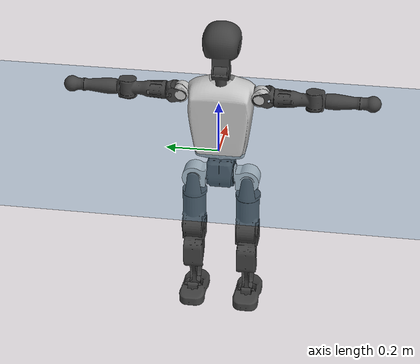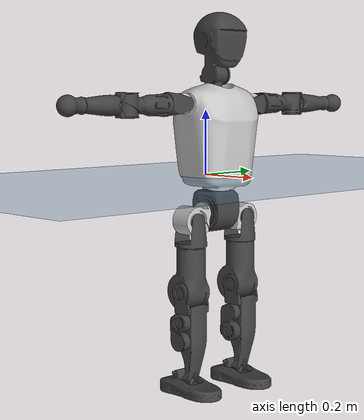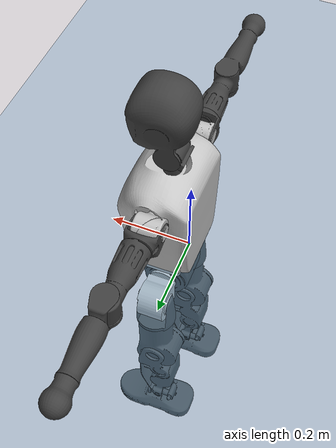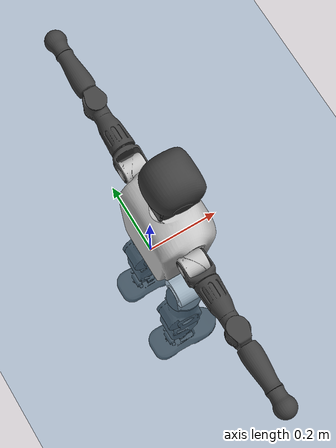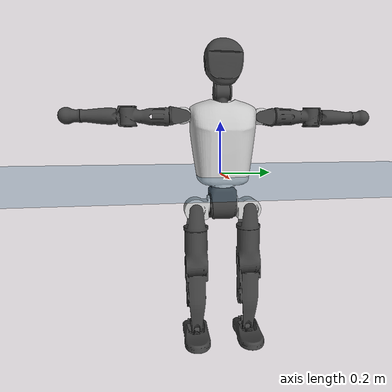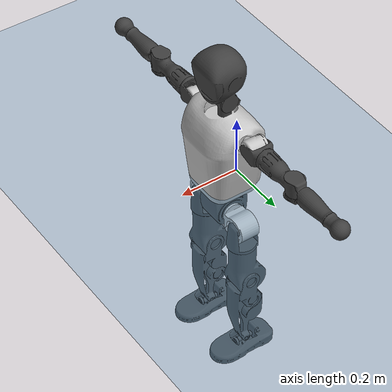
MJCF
<mujoco model="T1">
  <compiler angle="radian" assetdir="assets" balanceinertia="true" inertiafromgeom="false"/>

  <option timestep="0.005" density="1.2" viscosity="2e-05"/>

  <size nkey="1"/>

  <visual>
    <quality shadowsize="8192"/>
    <map shadowclip="0.5"/>
  </visual>

  <default>
    <default class="/">
      <joint armature="0.01" damping="0.01" frictionloss="0.1"/>
      <geom contype="0" conaffinity="0" group="1" solref="-1000 -80"/>
      <site size="0.01 0.005 0.005" group="5"/>
      <general forcelimited="true" biastype="affine" gainprm="25" biasprm="0 -25 -0.6"/>
      <default class="t1">
        <geom rgba="0.25 0.25 0.25 1"/>
        <default class="visual">
          <geom type="mesh" group="2"/>
        </default>
        <default class="collision">
          <geom group="3"/>
        </default>
        <default class="foot">
          <geom size="0.1115 0.05 0.015" type="box" condim="6" group="4" priority="1" solimp="0.015 1 0.015"/>
        </default>
        <default class="reward_collision_sphere">
          <geom group="5" rgba="1 0 0 1"/>
        </default>
      </default>
    </default>
  </default>

  <asset>
    <texture type="skybox" colorspace="auto" name="//unnamed_texture_0" builtin="gradient" rgb1="0.95 0.95 0.95" rgb2="0.95 0.95 0.95" width="100" height="600"/>
    <texture type="2d" colorspace="auto" name="texplane" builtin="checker" rgb1="0.345 0.575 0.748" rgb2="0.345 0.575 0.748" markrgb="1 1 1" width="512" height="512"/>
    <material name="MatPlane" class="/" texture="texplane" texuniform="true" texrepeat="2 2" specular="0.9"/>
    <mesh name="Trunk" class="/" file="Trunk.stl"/>
    <mesh name="H1" class="/" file="H1.stl"/>
    <mesh name="H2" class="/" file="H2.stl"/>
    <mesh name="AL1" class="/" file="AL1.stl"/>
    <mesh name="AL2" class="/" file="AL2.stl"/>
    <mesh name="AL3" class="/" file="AL3.stl"/>
    <mesh name="left_hand_link" class="/" file="left_hand_link.stl"/>
    <mesh name="AR1" class="/" file="AR1.stl"/>
    <mesh name="AR2" class="/" file="AR2.stl"/>
    <mesh name="AR3" class="/" file="AR3.stl"/>
    <mesh name="right_hand_link" class="/" file="right_hand_link.stl"/>
    <mesh name="Waist" class="/" file="Waist.stl"/>
    <mesh name="Hip_Pitch_Left" class="/" file="Hip_Pitch_Left.stl"/>
    <mesh name="Hip_Roll_Left" class="/" file="Hip_Roll_Left.stl"/>
    <mesh name="Hip_Yaw_Left" class="/" file="Hip_Yaw_Left.stl"/>
    <mesh name="Shank_Left" class="/" file="Shank_Left.stl"/>
    <mesh name="Ankle_Cross_Left" class="/" file="Ankle_Cross_Left.stl"/>
    <mesh name="left_foot_link" class="/" file="left_foot_link.stl"/>
    <mesh name="Hip_Pitch_Right" class="/" file="Hip_Pitch_Right.stl"/>
    <mesh name="Hip_Roll_Right" class="/" file="Hip_Roll_Right.stl"/>
    <mesh name="Hip_Yaw_Right" class="/" file="Hip_Yaw_Right.stl"/>
    <mesh name="Shank_Right" class="/" file="Shank_Right.stl"/>
    <mesh name="Ankle_Cross_Right" class="/" file="Ankle_Cross_Right.stl"/>
    <mesh name="right_foot_link" class="/" file="right_foot_link.stl"/>
  </asset>

  <worldbody>
    <geom name="floor" class="/" size="100 100 0.125" type="plane" group="0" material="MatPlane"/>
    <light name="toplight_shadow" class="/" pos="0 0 5" dir="0.0990148 0.0990148 -0.990148" type="directional" ambient="0.04 0.04 0.04" diffuse="0.55 0.55 0.55" specular="0.12 0.12 0.12"/>
    <light name="toplight_fill" class="/" pos="0 0 5" dir="0.0990148 0.0990148 -0.990148" type="directional" castshadow="false" ambient="0.04 0.04 0.04" diffuse="0.3 0.3 0.3" specular="0.08 0.08 0.08"/>
    <body name="trunk" childclass="t1" pos="-0.00192259 -0.00273559 0.00253689" quat="0.999999 -0.00108829 0.000595054 0.000502232">
      <inertial pos="0.0387155 -0.00216956 0.106781" quat="0.999951 -0.00211012 -0.00948011 0.00182281" mass="8.23435" diaginertia="0.0176897 0.0663673 0.0551343"/>
      <joint name="//unnamed_joint_0" type="free" armature="0" damping="0" frictionloss="0"/>
      <geom name="//unnamed_geom_1" class="visual" rgba="0.76 0.76 0.76 1" mesh="Trunk"/>
      <geom name="//unnamed_geom_2" class="collision" size="0.0668578 0.0891437 0.133716" pos="0.0429923 0 0.119458" type="box"/>
      <geom name="//unnamed_geom_3" class="reward_collision_sphere" size="0.102515" pos="0.0429923 0 0.099548"/>
      <geom name="//unnamed_geom_4" class="reward_collision_sphere" size="0.0133716" pos="0.0429923 0.0817948 0"/>
      <geom name="//unnamed_geom_5" class="reward_collision_sphere" size="0.0133716" pos="0.0429923 -0.0817948 0"/>
      <geom name="//unnamed_geom_6" class="reward_collision_sphere" size="0.0133716" pos="0.0429923 0.102965 0.179186"/>
      <geom name="//unnamed_geom_7" class="reward_collision_sphere" size="0.0133716" pos="0.0429923 -0.102965 0.179186"/>
      <site name="imu" pos="-0.0139038 -0.0118383 -0.00301481" size="0.00891437"/>
      <camera name="track" pos="0 -1.92458 0" quat="0.707107 0.707107 0 0" mode="trackcom"/>
      <camera name="ego_camera" pos="0.0874177 0 0.418102" quat="-0.5 -0.5 0.5 0.5"/>
      <body name="H1" pos="0.0453968 0.000769216 0.242766" quat="0.999999 5.42041e-05 -0.00031622 0.00113439">
        <inertial pos="0.00111115 -0.001911 0.0598559" quat="0.766036 -0.0165271 0.00643731 0.642553" mass="0.318555" diaginertia="4.5338e-05 0.000191128 0.000141787"/>
        <joint name="AAHead_yaw" pos="0 0 0" axis="-0.010491 -0.00396302 0.999937" range="-1.62698 1.55546" armature="0.0101149" damping="0.00701693" frictionloss="0.076485"/>
        <geom name="//unnamed_geom_8" class="visual" mesh="H1"/>
        <body name="H2" pos="0.00214587 0.000541993 0.0623436" quat="1 -7.4741e-05 -0.000221899 -0.000458945">
          <inertial pos="0.00437377 -0.00078158 0.097627" quat="0.988556 0.10554 -0.0736718 -0.0786873" mass="0.431341" diaginertia="0.000367304 0.00150709 0.00162239"/>
          <joint name="Head_pitch" pos="0 0 0" axis="-0.0104013 -0.999901 -0.0095088" range="-1.20941 0.397529" armature="0.00875622" damping="0.0121763" frictionloss="0.0817246"/>
          <geom name="//unnamed_geom_9" class="visual" mesh="H2"/>
          <geom name="//unnamed_geom_10" class="collision" size="0.0713149" pos="0.00716538 0 0.109503"/>
          <geom name="//unnamed_geom_11" class="reward_collision_sphere" size="0.0802293" pos="0.0143308 0 0.099548"/>
        </body>
      </body>
      <body name="AL1" pos="0.0403374 0.101156 0.217691" quat="1 3.4771e-05 0.000675961 0.000361021">
        <inertial pos="-0.00132978 0.0436687 -0.00180307" quat="0.502116 0.48822 -0.510371 0.499041" mass="0.379344" diaginertia="0.00026256 0.00109459 0.000291813"/>
        <joint name="Left_Shoulder_Pitch" pos="0 0 0" axis="0.00935645 0.99992 0.00851945" stiffness="0.0127905" range="-3.2999 1.18399" armature="0.00868128" damping="0.0143178" frictionloss="0.0852498"/>
        <geom name="//unnamed_geom_12" class="visual" rgba="0.76 0.76 0.76 1" mesh="AL1"/>
        <body name="AL2" pos="0.0011088 0.0436167 -0.00276708" quat="1 -0.000320558 -5.75362e-05 7.92572e-05">
          <inertial pos="0.00121477 0.0351928 -0.000406443" quat="0.486948 0.511946 -0.488695 0.51183" mass="0.111672" diaginertia="7.57619e-05 0.000276177 0.000170502"/>
          <joint name="Left_Shoulder_Roll" pos="0 0 0" axis="-0.999943 0.0100201 -0.00357892" range="-1.52673 1.72527" armature="0.00802399" damping="0.00117235" frictionloss="0.0994506"/>
          <geom name="//unnamed_geom_13" class="visual" mesh="AL2"/>
          <body name="AL3" pos="0.00336706 0.0598829 0.00188496" quat="1 -0.000477149 0.000349012 0.000702557">
            <inertial pos="-0.000622399 0.0794666 -0.00172445" quat="0.711631 0.702469 0.00768911 0.00767011" mass="0.710259" diaginertia="0.00235377 0.0105625 0.000576834"/>
            <joint name="Left_Elbow_Pitch" pos="0 0 0" axis="0.00827438 -0.999903 -0.0112126" range="-2.24785 2.23394" armature="0.00994034" damping="0.00022455" frictionloss="0.101674"/>
            <geom name="//unnamed_geom_14" class="visual" mesh="AL3"/>
            <geom name="//unnamed_geom_15" class="collision" size="0.0267431 0.0668578" pos="0 0.0481146 0" quat="0.707105 0.707108 0 0" type="cylinder"/>
            <geom name="//unnamed_geom_16" class="reward_collision_sphere" size="0.0320917"/>
            <body name="left_hand_link" pos="0.00293803 0.141479 -0.00101084" quat="0.999999 -0.00108829 -0.000684326 0.000595835">
              <inertial pos="0.000275878 0.105874 -0.00222368" quat="0.70635 0.707849 -0.00235033 -0.00369775" mass="0.239488" diaginertia="0.00158607 0.00677189 0.000210457"/>
              <joint name="Left_Elbow_Yaw" pos="0 0 0" axis="-0.0141678 -0.0114597 0.999834" stiffness="0.0111724" range="-2.44861 -0.00345075" armature="0.00858021" damping="0.010141" frictionloss="0.101033"/>
              <geom name="//unnamed_geom_17" class="visual" mesh="left_hand_link"/>
              <geom name="//unnamed_geom_18" class="collision" size="0.0267431 0.0780007" pos="0 0.125098 0" quat="0.707105 0.707108 0 0" type="cylinder"/>
              <geom name="//unnamed_geom_19" class="reward_collision_sphere" size="0.0445718"/>
              <geom name="//unnamed_geom_20" class="reward_collision_sphere" size="0.0312003" pos="0 0.105852 0"/>
              <geom name="//unnamed_geom_21" class="reward_collision_sphere" size="0.0312003" pos="0 0.206893 0"/>
            </body>
          </body>
        </body>
      </body>
      <body name="AR1" pos="0.040049 -0.0994348 0.218548" quat="1 0.000137269 -0.000565863 -0.00047473">
        <inertial pos="-0.0016114 -0.0456345 0.00212496" quat="0.505282 0.493439 -0.505235 0.495929" mass="0.376154" diaginertia="0.000249178 0.00107871 0.000296151"/>
        <joint name="Right_Shoulder_Pitch" pos="0 0 0" axis="-0.000909306 -0.999999 -0.00129123" stiffness="0.00363701" range="-1.24191 3.31237" armature="0.00767991" damping="0.0128104" frictionloss="0.0888741"/>
        <geom name="//unnamed_geom_22" class="visual" rgba="0.76 0.76 0.76 1" mesh="AR1"/>
        <body name="AR2" pos="0.000204079 -0.0416111 -0.00118055" quat="1 -8.32376e-05 6.00808e-05 -3.33908e-05">
          <inertial pos="0.00254085 -0.0366304 -0.00182293" quat="0.517266 0.480732 -0.518756 0.481897" mass="0.117945" diaginertia="7.37287e-05 0.000280456 0.00016868"/>
          <joint name="Right_Shoulder_Roll" pos="0 0 0" axis="-0.999996 0.00139453 -0.00236215" stiffness="0.00755946" range="-1.75615 1.61917" armature="0.00881268" damping="0" frictionloss="0.0888972"/>
          <geom name="//unnamed_geom_23" class="visual" mesh="AR2"/>
          <body name="AR3" pos="0.0025313 -0.0574881 -0.00352939" quat="1 3.98884e-05 -0.000434091 0.000362417">
            <inertial pos="0.00121502 -0.0847438 0.000672294" quat="0.706833 0.707377 8.0951e-05 0.00227544" mass="0.726011" diaginertia="0.00245749 0.0111273 0.000637762"/>
            <joint name="Right_Elbow_Pitch" pos="0 0 0" axis="0.00626216 0.999973 -0.00395758" range="-2.27762 2.26949" armature="0.00985257" damping="0.00839214" frictionloss="0.0790941"/>
            <geom name="//unnamed_geom_24" class="visual" mesh="AR3"/>
            <geom name="//unnamed_geom_25" class="collision" size="0.0267431 0.0668578" pos="0 -0.0481146 0" quat="0.707105 0.707108 0 0" type="cylinder"/>
            <geom name="//unnamed_geom_26" class="reward_collision_sphere" size="0.0320917"/>
            <body name="right_hand_link" pos="-0.000516378 -0.142434 0.000657924" quat="0.999999 -0.000844309 0.000955607 0.000522141">
              <inertial pos="-0.000609184 -0.1042 -0.000910424" quat="0.708752 0.705411 0.00724502 0.00352385" mass="0.234805" diaginertia="0.00149924 0.00671781 0.000217486"/>
              <joint name="Right_Elbow_Yaw" pos="0 0 0" axis="-0.000331904 -0.00915569 0.999958" range="-0.0444958 2.4718" armature="0.00898353" damping="0.00172718" frictionloss="0.0924832"/>
              <geom name="//unnamed_geom_27" class="visual" mesh="right_hand_link"/>
              <geom name="//unnamed_geom_28" class="collision" size="0.0267431 0.0780007" pos="0 -0.125098 0" quat="0.707105 0.707108 0 0" type="cylinder"/>
              <geom name="//unnamed_geom_29" class="reward_collision_sphere" size="0.0445718"/>
              <geom name="//unnamed_geom_30" class="reward_collision_sphere" size="0.0312003" pos="0 -0.105852 0"/>
              <geom name="//unnamed_geom_31" class="reward_collision_sphere" size="0.0312003" pos="0 -0.206893 0"/>
            </body>
          </body>
        </body>
      </body>
      <body name="Waist" pos="0.0480613 0.000586059 -0.115416" quat="1 -0.00052327 0.000794564 -9.86161e-05">
        <inertial pos="0.00143926 -0.000725472 0.00988997" quat="0.981961 -0.0084796 -0.188859 0.00363309" mass="1.76926" diaginertia="0.000981654 0.0044411 0.00461762"/>
        <joint name="Waist" pos="0 0 0" axis="0.0143121 -0.000878527 0.999897" range="-1.5763 1.5899" armature="0.00966764" damping="0.021155" frictionloss="0.0775622"/>
        <geom name="//unnamed_geom_32" class="visual" mesh="Waist"/>
        <body name="Hip_Pitch_Left" pos="0.00374464 0.103597 -0.00211093" quat="0.999999 0.000177958 -0.000523173 0.00088725">
          <inertial pos="0.00220183 -0.00498803 -0.0204067" quat="0.976293 0.21552 0.0190261 0.00635512" mass="0.749015" diaginertia="0.000337332 0.00120784 0.00125273"/>
          <joint name="Left_Hip_Pitch" pos="0 0 0" axis="0.000527224 0.999894 -0.0145219" stiffness="0.00329964" range="-1.81147 1.61738" armature="0.00942105" damping="0.00105715" frictionloss="0.0913022"/>
          <geom name="//unnamed_geom_33" class="visual" rgba="0.76 0.76 0.76 1" mesh="Hip_Pitch_Left"/>
          <body name="Hip_Roll_Left" pos="0.0014963 0.000377296 -0.018145" quat="1 0.000125064 -0.000127374 0.000258864">
            <inertial pos="-0.0017735 0.0026679 -0.0534997" quat="0.708516 -0.0199876 -0.00671949 0.70538" mass="0.272917" diaginertia="0.000332033 0.00119384 0.000497278"/>
            <joint name="Left_Hip_Roll" pos="0 0 0" axis="-0.999975 -0.00622838 -0.00332852" range="-1.56725 0.244672" armature="0.00844158" damping="0.010735" frictionloss="0.0764953"/>
            <geom name="//unnamed_geom_34" class="visual" mesh="Hip_Roll_Left"/>
            <geom name="//unnamed_geom_35" class="reward_collision_sphere" size="0.049029"/>
            <body name="Hip_Yaw_Left" pos="-0.00138031 0.00198455 -0.079491" quat="1 -5.22044e-06 0.000264442 9.94816e-06">
              <inertial pos="-0.00558662 -0.00078015 -0.0881603" quat="0.700176 -0.0261251 -0.0345386 0.712656" mass="1.43737" diaginertia="0.00472894 0.0201066 0.00241035"/>
              <joint name="Left_Hip_Yaw" pos="0 0 0" axis="0.00628553 -0.00880391 -0.999941" range="-0.957869 0.951634" armature="0.00930044" damping="0.0150806" frictionloss="0.0890175"/>
              <geom name="//unnamed_geom_36" class="visual" mesh="Hip_Yaw_Left"/>
              <geom name="//unnamed_geom_37" class="collision" size="0.0445718 0.0713149" type="cylinder"/>
              <body name="Shank_Left" pos="-0.00581514 0.00169857 -0.13646" quat="1 -0.000720587 -7.91094e-05 -0.000189201">
                <inertial pos="-0.0043973 -0.00158436 -0.123569" quat="0.997677 0.00158272 -0.01947 0.0652677" mass="1.2374" diaginertia="0.00674456 0.0284817 0.00187225"/>
                <joint name="Left_Knee_Pitch" pos="0 0 0" axis="-0.000240054 1 0.000553041" stiffness="0.00236196" range="0.048361 2.3329" armature="0.00947951" damping="0.0242795" frictionloss="0.0934337"/>
                <geom name="//unnamed_geom_38" class="visual" mesh="Shank_Left"/>
                <geom name="//unnamed_geom_39" class="collision" size="0.0445718 0.0668578" pos="0 0 -0.119458" type="cylinder"/>
                <geom name="//unnamed_geom_40" class="reward_collision_sphere" size="0.0579434"/>
                <body name="Ankle_Cross_Left" pos="0.00146176 -0.000414413 -0.281717" quat="1 0.000311451 -7.86187e-05 -2.40045e-05">
                  <inertial pos="-0.00169722 0.000772318 -0.0052922" quat="0.441374 0.551094 0.55235 0.443163" mass="0.0491795" diaginertia="5.58763e-06 2.04632e-05 1.10606e-05"/>
                  <joint name="Left_Ankle_Pitch" pos="0 0 0" axis="-0.00986434 0.999947 0.00286407" range="-0.903117 0.341518" armature="0.00905601" damping="0.00847376" frictionloss="0.0788419"/>
                  <geom name="//unnamed_geom_41" class="visual" mesh="Ankle_Cross_Left"/>
                  <body name="left_foot_link" pos="0.00117959 0.00227326 -0.0118068" quat="1 -0.000142286 0.000313313 0.000770318">
                    <inertial pos="0.00213155 -6.57347e-05 -0.010841" quat="0.00593902 0.620315 0.0121293 0.784237" mass="0.505617" diaginertia="0.000527571 0.00202013 0.00212224"/>
                    <joint name="Left_Ankle_Roll" pos="0 0 0" axis="-0.999986 -0.00228833 0.00486349" range="-0.452782 0.389592" armature="0.00889076" damping="0" frictionloss="0.0963607"/>
                    <geom name="//unnamed_geom_42" class="visual" mesh="left_foot_link"/>
                    <geom name="left_foot" class="foot" size="0.109899 0.0402102 0.0128061" pos="0.00716538 0 -0.0149322"/>
                    <geom name="//unnamed_geom_44" class="reward_collision_sphere" size="0.0463547" pos="0.00716538 0 -0.0149322"/>
                    <geom name="//unnamed_geom_45" class="reward_collision_sphere" size="0.0267431" pos="0.0680711 -0.0221327 -0.0149322"/>
                    <geom name="//unnamed_geom_46" class="reward_collision_sphere" size="0.0267431" pos="-0.0501577 -0.0221327 -0.0149322"/>
                    <site name="left_foot" class="foot" pos="0.00716538 0 -0.0149322" size="0.00891437"/>
                  </body>
                </body>
              </body>
            </body>
          </body>
        </body>
        <body name="Hip_Pitch_Right" pos="-0.00333627 -0.103029 -0.000378987" quat="0.999999 0.000497309 -0.00160359 0.000255717">
          <inertial pos="-0.00234139 0.00641515 -0.0151422" quat="0.974176 -0.225057 0.0170115 -0.00637066" mass="0.736508" diaginertia="0.000348766 0.00124702 0.0012706"/>
          <joint name="Right_Hip_Pitch" pos="0 0 0" axis="0.00125804 -0.999991 -0.00410465" range="-1.56954 1.8253" armature="0.00939211" damping="0" frictionloss="0.101784"/>
          <geom name="//unnamed_geom_47" class="visual" rgba="0.76 0.76 0.76 1" mesh="Hip_Pitch_Right"/>
          <body name="Hip_Roll_Right" pos="0.00223068 -0.000171413 -0.0219643" quat="1 0.000201878 2.73198e-05 2.64181e-05">
            <inertial pos="-0.00152673 -0.0028061 -0.0561732" quat="0.704989 -0.0110867 0.00485606 0.709115" mass="0.28338" diaginertia="0.00032733 0.0012632 0.000495016"/>
            <joint name="Right_Hip_Roll" pos="0 0 0" axis="-0.999994 -0.000526953 0.00329415" range="-0.25521 1.57829" armature="0.0101355" damping="0.00865217" frictionloss="0.0779967"/>
            <geom name="//unnamed_geom_48" class="visual" mesh="Hip_Roll_Right"/>
            <geom name="//unnamed_geom_49" class="reward_collision_sphere" size="0.049029"/>
            <body name="Hip_Yaw_Right" pos="-0.00220481 0.000960951 -0.0822886" quat="1 -5.80531e-05 -0.000107819 0.000155877">
              <inertial pos="-0.0046195 -0.00287022 -0.0871032" quat="0.713951 -0.0329532 -0.0339115 0.698597" mass="1.57803" diaginertia="0.00482063 0.0221301 0.00252261"/>
              <joint name="Right_Hip_Yaw" pos="0 0 0" axis="-0.00246959 0.00568224 -0.999981" stiffness="0.00616977" range="-0.986347 1.01251" armature="0.00817696" damping="0" frictionloss="0.0904972"/>
              <geom name="//unnamed_geom_50" class="visual" mesh="Hip_Yaw_Right"/>
              <geom name="//unnamed_geom_51" class="collision" size="0.0445718 0.0713149" type="cylinder"/>
              <body name="Shank_Right" pos="-0.00801009 0.000591302 -0.135672" quat="1 -2.11395e-05 7.25943e-05 7.98248e-05">
                <inertial pos="-0.00247336 0.000746743 -0.120757" quat="0.999631 0.00630293 -0.0142516 -0.0222646" mass="1.29214" diaginertia="0.00686445 0.0288481 0.0018971"/>
                <joint name="Right_Knee_Pitch" pos="0 0 0" axis="-0.00220195 -0.999995 0.00209996" range="-2.33802 0.00494129" armature="0.00920232" damping="0.0104421" frictionloss="0.0995132"/>
                <geom name="//unnamed_geom_52" class="visual" mesh="Shank_Right"/>
                <geom name="//unnamed_geom_53" class="collision" size="0.0445718 0.0668578" pos="0 0 -0.119458" type="cylinder"/>
                <geom name="//unnamed_geom_54" class="reward_collision_sphere" size="0.0579434"/>
                <body name="Ankle_Cross_Right" pos="0.00312477 0.000745671 -0.279265" quat="1 -0.000314062 -9.87398e-05 0.000158874">
                  <inertial pos="-0.00137029 0.00276699 -0.00847028" quat="0.433826 0.550334 0.552761 0.45098" mass="0.0499415" diaginertia="5.67518e-06 2.13071e-05 1.07247e-05"/>
                  <joint name="Right_Ankle_Pitch" pos="0 0 0" axis="-0.00693322 -0.999976 0.000564556" range="-0.378923 0.856391" armature="0.00901676" damping="0.00840218" frictionloss="0.093719"/>
                  <geom name="//unnamed_geom_55" class="visual" mesh="Ankle_Cross_Right"/>
                  <body name="right_foot_link" pos="-0.000129341 -0.00378368 -0.00910577" quat="1 -0.000105059 -2.36302e-05 -0.000309599">
                    <inertial pos="0.00166696 -0.000390256 -0.00626805" quat="-0.0123909 0.624436 0.00440981 0.780965" mass="0.47838" diaginertia="0.000516693 0.00198976 0.00207192"/>
                    <joint name="Right_Ankle_Roll" pos="0 0 0" axis="-0.999904 0.00228775 -0.01364" range="-0.440269 0.406515" armature="0.00966801" damping="0.0119183" frictionloss="0.0798968"/>
                    <geom name="//unnamed_geom_56" class="visual" mesh="right_foot_link"/>
                    <geom name="right_foot" class="foot" size="0.103734 0.0395028 0.0120505" pos="0.00716538 0 -0.0149322"/>
                    <geom name="//unnamed_geom_58" class="reward_collision_sphere" size="0.0356575"/>
                    <geom name="//unnamed_geom_59" class="reward_collision_sphere" size="0.0267431" pos="0.00716538 0 -0.0149322"/>
                    <geom name="//unnamed_geom_60" class="reward_collision_sphere" size="0.0267431" pos="0.0680711 0.0221327 -0.0149322"/>
                    <geom name="//unnamed_geom_61" class="reward_collision_sphere" size="0.0267431" pos="-0.0501577 0.0221327 -0.0149322"/>
                    <site name="right_foot" class="foot" pos="0.00716538 0 -0.0149322" size="0.00891437"/>
                  </body>
                </body>
              </body>
            </body>
          </body>
        </body>
      </body>
    </body>
  </worldbody>

  <contact>
    <pair class="/" geom1="floor" geom2="left_foot" name="//unnamed_contact_0"/>
    <pair class="/" geom1="floor" geom2="right_foot" name="//unnamed_contact_1"/>
  </contact>

  <actuator>
    <general name="AAHead_yaw" class="/" joint="AAHead_yaw" forcerange="-5.67111 5.67111" gainprm="21.9015" biasprm="0 -21.9015 -0.515467"/>
    <general name="Head_pitch" class="/" joint="Head_pitch" forcerange="-6.62031 6.62031" gainprm="21.9015" biasprm="0 -21.9015 -0.515467"/>
    <general name="Left_Shoulder_Pitch" class="/" joint="Left_Shoulder_Pitch" forcerange="-15.9522 15.9522" gainprm="21.9015" biasprm="0 -21.9015 -0.515467"/>
    <general name="Left_Shoulder_Roll" class="/" joint="Left_Shoulder_Roll" forcerange="-16.9348 16.9348" gainprm="21.9015" biasprm="0 -21.9015 -0.515467"/>
    <general name="Left_Elbow_Pitch" class="/" joint="Left_Elbow_Pitch" forcerange="-17.7607 17.7607" gainprm="21.9015" biasprm="0 -21.9015 -0.515467"/>
    <general name="Left_Elbow_Yaw" class="/" joint="Left_Elbow_Yaw" forcerange="-17.0241 17.0241" gainprm="21.9015" biasprm="0 -21.9015 -0.515467"/>
    <general name="Right_Shoulder_Pitch" class="/" joint="Right_Shoulder_Pitch" forcerange="-16.2881 16.2881" gainprm="21.9015" biasprm="0 -21.9015 -0.515467"/>
    <general name="Right_Shoulder_Roll" class="/" joint="Right_Shoulder_Roll" forcerange="-17.7342 17.7342" gainprm="21.9015" biasprm="0 -21.9015 -0.515467"/>
    <general name="Right_Elbow_Pitch" class="/" joint="Right_Elbow_Pitch" forcerange="-17.739 17.739" gainprm="21.9015" biasprm="0 -21.9015 -0.515467"/>
    <general name="Right_Elbow_Yaw" class="/" joint="Right_Elbow_Yaw" forcerange="-14.2905 14.2905" gainprm="21.9015" biasprm="0 -21.9015 -0.515467"/>
    <general name="Waist" class="/" joint="Waist" forcerange="-26.8321 26.8321" gainprm="21.9015" biasprm="0 -21.9015 -0.515467"/>
    <general name="Left_Hip_Pitch" class="/" joint="Left_Hip_Pitch" forcerange="-44.0923 44.0923" gainprm="21.9015" biasprm="0 -21.9015 -0.515467"/>
    <general name="Left_Hip_Roll" class="/" joint="Left_Hip_Roll" forcerange="-27.5743 27.5743" gainprm="21.9015" biasprm="0 -21.9015 -0.515467"/>
    <general name="Left_Hip_Yaw" class="/" joint="Left_Hip_Yaw" forcerange="-27.9803 27.9803" gainprm="21.9015" biasprm="0 -21.9015 -0.515467"/>
    <general name="Left_Knee_Pitch" class="/" joint="Left_Knee_Pitch" forcerange="-53.0641 53.0641" gainprm="21.9015" biasprm="0 -21.9015 -0.515467"/>
    <general name="Left_Ankle_Pitch" class="/" joint="Left_Ankle_Pitch" forcerange="-18.2465 18.2465" gainprm="21.9015" biasprm="0 -21.9015 -0.515467"/>
    <general name="Left_Ankle_Roll" class="/" joint="Left_Ankle_Roll" forcerange="-13.4423 13.4423" gainprm="21.9015" biasprm="0 -21.9015 -0.515467"/>
    <general name="Right_Hip_Pitch" class="/" joint="Right_Hip_Pitch" forcerange="-41.5843 41.5843" gainprm="21.9015" biasprm="0 -21.9015 -0.515467"/>
    <general name="Right_Hip_Roll" class="/" joint="Right_Hip_Roll" forcerange="-26.7241 26.7241" gainprm="21.9015" biasprm="0 -21.9015 -0.515467"/>
    <general name="Right_Hip_Yaw" class="/" joint="Right_Hip_Yaw" forcerange="-26.0081 26.0081" gainprm="21.9015" biasprm="0 -21.9015 -0.515467"/>
    <general name="Right_Knee_Pitch" class="/" joint="Right_Knee_Pitch" forcerange="-48.506 48.506" gainprm="21.9015" biasprm="0 -21.9015 -0.515467"/>
    <general name="Right_Ankle_Pitch" class="/" joint="Right_Ankle_Pitch" forcerange="-15.9855 15.9855" gainprm="21.9015" biasprm="0 -21.9015 -0.515467"/>
    <general name="Right_Ankle_Roll" class="/" joint="Right_Ankle_Roll" forcerange="-14.7428 14.7428" gainprm="21.9015" biasprm="0 -21.9015 -0.515467"/>
  </actuator>

  <sensor>
    <gyro site="imu" name="imu_angular_velocity"/>
    <velocimeter site="imu" name="imu_linear_velocity"/>
    <framelinvel objtype="site" objname="left_foot" name="left_foot_global_linear_velocity"/>
    <framelinvel objtype="site" objname="right_foot" name="right_foot_global_linear_velocity"/>
  </sensor>

  <keyframe>
    <key name="home" qpos="0 0 0.6385 1 0 0 0 0 0 0 1.4 0 -0.4 0 -1.4 0 0.4 0 -0.4 0 0 0.8 -0.4 0 0.4 0 0 -0.8 0.4 0"/>
  </keyframe>
</mujoco>
